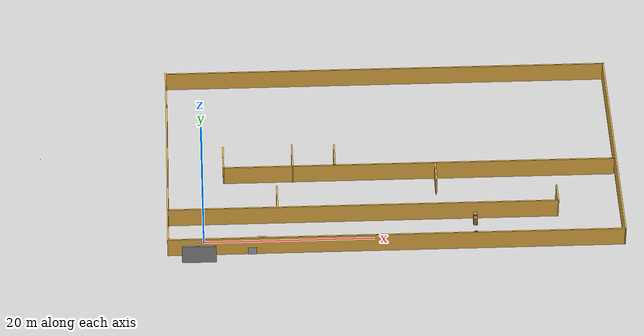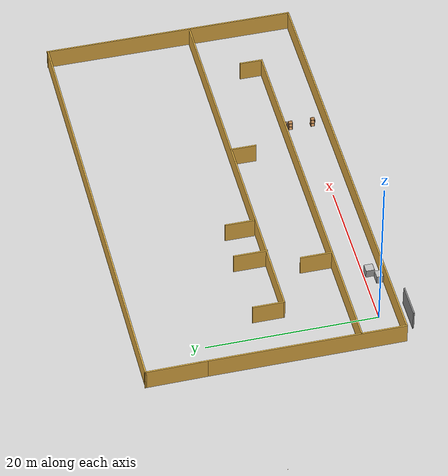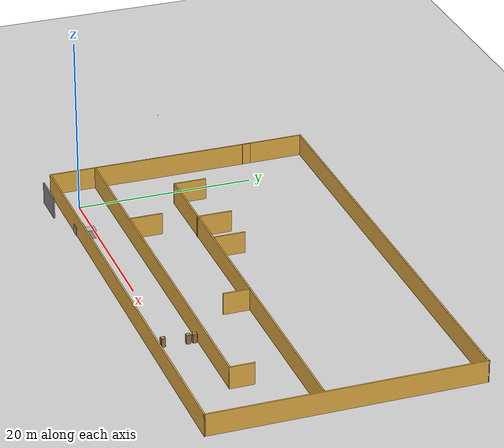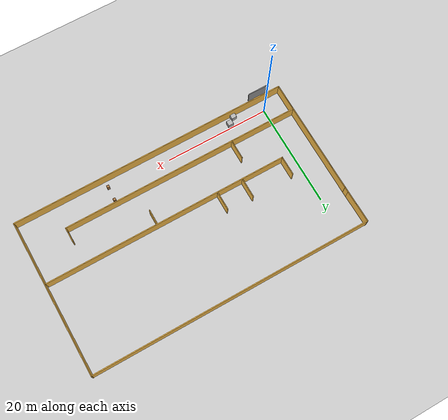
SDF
<sdf version="1.7">
 <world name="default">
  <light name="sun" type="directional">
   <pose>0 0 10 0 -0 0</pose>
   <diffuse>0.8 0.8 0.8 1</diffuse>
   <specular>0.2 0.2 0.2 1</specular>
   <attenuation>
    <range>1000</range>
    <constant>0.9</constant>
    <linear>0.01</linear>
    <quadratic>0.001</quadratic>
   </attenuation>
   <direction>-0.5 0.1 -0.9</direction>
   <spot><inner_angle>0</inner_angle><outer_angle>0</outer_angle><falloff>0</falloff></spot>
  </light>
  <model name="ground_plane">
   <static>1</static>
   <link name="link">
    <collision name="collision">
     <geometry><plane><normal>0 0 1</normal><size>100 100</size></plane></geometry>
     <surface>
      <contact><collide_bitmask>65535</collide_bitmask></contact>
      <friction><ode><mu>100</mu><mu2>50</mu2></ode></friction>
     </surface>
    </collision>
    <visual name="visual">
     <cast_shadows>0</cast_shadows>
     <geometry><plane><normal>0 0 1</normal><size>100 100</size></plane></geometry>
     <material>
      <script><uri>file://media/materials/scripts/gazebo.material</uri><name>Gazebo/Grey</name></script>
     </material>
    </visual>
   </link>
  </model>
  <gravity>0 0 -9.8</gravity>
  <magnetic_field>6e-06 2.3e-05 -4.2e-05</magnetic_field>
  <atmosphere type="adiabatic"/>
  <physics type="ode">
   <max_step_size>0.001</max_step_size>
   <real_time_factor>1</real_time_factor>
   <real_time_update_rate>1000</real_time_update_rate>
  </physics>
  <scene><ambient>0.4 0.4 0.4 1</ambient><background>0.7 0.7 0.7 1</background><shadows>1</shadows></scene>
  <spherical_coordinates>
   <surface_model>EARTH_WGS84</surface_model>
   <latitude_deg>0</latitude_deg>
   <longitude_deg>0</longitude_deg>
   <elevation>0</elevation>
   <heading_deg>0</heading_deg>
  </spherical_coordinates>
  <model name="ustbot_lv1">
   <pose>22.5941 12.8928 0 0 -0 0</pose>
   <link name="Wall_22">
    <collision name="Wall_22_Collision">
     <geometry><box><size>23.75 0.15 2.5</size></box></geometry>
     <pose>0 0 1.25 0 -0 0</pose>
    </collision>
    <visual name="Wall_22_Visual">
     <pose>0 0 1.25 0 -0 0</pose>
     <geometry><box><size>23.75 0.15 2.5</size></box></geometry>
     <material>
      <script><uri>file://media/materials/scripts/gazebo.material</uri><name>Gazebo/Grey</name></script>
      <ambient>1 0.764706 0.305882 1</ambient>
     </material>
     <meta><layer>0</layer></meta>
    </visual>
    <pose>-26.7688 -3.12629 0 0 -0 -1.5708</pose>
   </link>
   <link name="Wall_23">
    <collision name="Wall_23_Collision">
     <geometry><box><size>53.75 0.15 2.5</size></box></geometry>
     <pose>0 0 1.25 0 -0 0</pose>
    </collision>
    <visual name="Wall_23_Visual">
     <pose>0 0 1.25 0 -0 0</pose>
     <geometry><box><size>53.75 0.15 2.5</size></box></geometry>
     <material>
      <script><uri>file://media/materials/scripts/gazebo.material</uri><name>Gazebo/Grey</name></script>
      <ambient>1 0.764706 0.305882 1</ambient>
     </material>
     <meta><layer>0</layer></meta>
    </visual>
    <pose>0.031187 -14.9263 0 0 -0 0</pose>
   </link>
   <link name="Wall_24">
    <collision name="Wall_24_Collision">
     <geometry><box><size>30.0022 0.15 2.5</size></box></geometry>
     <pose>0 0 1.25 0 -0 0</pose>
    </collision>
    <visual name="Wall_24_Visual">
     <pose>0 0 1.25 0 -0 0</pose>
     <geometry><box><size>30.0022 0.15 2.5</size></box></geometry>
     <material>
      <script><uri>file://media/materials/scripts/gazebo.material</uri><name>Gazebo/Grey</name></script>
      <ambient>1 0.764706 0.305882 1</ambient>
     </material>
     <meta><layer>0</layer></meta>
    </visual>
    <pose>26.8002 -0.000248 0 0 -0 1.57287</pose>
   </link>
   <link name="Wall_25">
    <collision name="Wall_25_Collision">
     <geometry><box><size>53.75 0.15 2.5</size></box></geometry>
     <pose>0 0 1.25 0 -0 0</pose>
    </collision>
    <visual name="Wall_25_Visual">
     <pose>0 0 1.25 0 -0 0</pose>
     <geometry><box><size>53.75 0.15 2.5</size></box></geometry>
     <material>
      <script><uri>file://media/materials/scripts/gazebo.material</uri><name>Gazebo/Grey</name></script>
      <ambient>1 0.764706 0.305882 1</ambient>
     </material>
     <meta><layer>0</layer></meta>
    </visual>
    <pose>-0.030691 14.8639 0 0 -0 3.14159</pose>
   </link>
   <link name="Wall_26">
    <collision name="Wall_26_Collision">
     <geometry><box><size>7.25237 0.15 2.5</size></box></geometry>
     <pose>0 0 1.25 0 -0 0</pose>
    </collision>
    <visual name="Wall_26_Visual">
     <pose>0 0 1.25 0 -0 0</pose>
     <geometry><box><size>7.25237 0.15 2.5</size></box></geometry>
     <material>
      <script><uri>file://media/materials/scripts/gazebo.material</uri><name>Gazebo/Grey</name></script>
      <ambient>1 0.764706 0.305882 1</ambient>
     </material>
     <meta><layer>0</layer></meta>
    </visual>
    <pose>-26.7998 11.3748 0 0 -0 -1.56208</pose>
   </link>
   <link name="Wall_29">
    <collision name="Wall_29_Collision">
     <geometry><box><size>46.25 0.15 2.5</size></box></geometry>
     <pose>0 0 1.25 0 -0 0</pose>
    </collision>
    <visual name="Wall_29_Visual">
     <pose>0 0 1.25 0 -0 0</pose>
     <geometry><box><size>46.25 0.15 2.5</size></box></geometry>
     <material>
      <script><uri>file://media/materials/scripts/gazebo.material</uri><name>Gazebo/Grey</name></script>
      <ambient>1 0.764706 0.305882 1</ambient>
     </material>
     <meta><layer>0</layer></meta>
    </visual>
    <pose>-3.71651 -9.74555 0 0 -0 0</pose>
   </link>
   <link name="Wall_30">
    <collision name="Wall_30_Collision">
     <geometry><box><size>2.75 0.15 2.5</size></box></geometry>
     <pose>0 0 1.25 0 -0 0</pose>
    </collision>
    <visual name="Wall_30_Visual">
     <pose>0 0 1.25 0 -0 0</pose>
     <geometry><box><size>2.75 0.15 2.5</size></box></geometry>
     <material>
      <script><uri>file://media/materials/scripts/gazebo.material</uri><name>Gazebo/Grey</name></script>
      <ambient>1 0.764706 0.305882 1</ambient>
     </material>
     <meta><layer>0</layer></meta>
    </visual>
    <pose>19.3335 -8.44555 0 0 -0 1.5708</pose>
   </link>
   <link name="Wall_32">
    <collision name="Wall_32_Collision">
     <geometry><box><size>46.75 0.15 2.5</size></box></geometry>
     <pose>0 0 1.25 0 -0 0</pose>
    </collision>
    <visual name="Wall_32_Visual">
     <pose>0 0 1.25 0 -0 0</pose>
     <geometry><box><size>46.75 0.15 2.5</size></box></geometry>
     <material>
      <script><uri>file://media/materials/scripts/gazebo.material</uri><name>Gazebo/Grey</name></script>
      <ambient>1 0.764706 0.305882 1</ambient>
     </material>
     <meta><layer>0</layer></meta>
    </visual>
    <pose>3.23148 -2.5585 0 0 -0 3.14159</pose>
   </link>
   <link name="Wall_33">
    <collision name="Wall_33_Collision">
     <geometry><box><size>3.75 0.15 2.5</size></box></geometry>
     <pose>0 0 1.25 0 -0 0</pose>
    </collision>
    <visual name="Wall_33_Visual">
     <pose>0 0 1.25 0 -0 0</pose>
     <geometry><box><size>3.75 0.15 2.5</size></box></geometry>
     <material>
      <script><uri>file://media/materials/scripts/gazebo.material</uri><name>Gazebo/Grey</name></script>
      <ambient>1 0.764706 0.305882 1</ambient>
     </material>
     <meta><layer>0</layer></meta>
    </visual>
    <pose>-20.0685 -0.758505 0 0 -0 1.5708</pose>
   </link>
   <link name="Wall_35">
    <collision name="Wall_35_Collision">
     <geometry><box><size>3 0.15 2.5</size></box></geometry>
     <pose>0 0 1.25 0 -0 0</pose>
    </collision>
    <visual name="Wall_35_Visual">
     <pose>0 0 1.25 0 -0 0</pose>
     <geometry><box><size>3 0.15 2.5</size></box></geometry>
     <material>
      <script><uri>file://media/materials/scripts/gazebo.material</uri><name>Gazebo/Grey</name></script>
      <ambient>1 0.764706 0.305882 1</ambient>
     </material>
     <meta><layer>0</layer></meta>
    </visual>
    <pose>5.18382 -4.05466 0 0 -0 -1.5708</pose>
   </link>
   <link name="Wall_37">
    <collision name="Wall_37_Collision">
     <geometry><box><size>3.75 0.15 2.5</size></box></geometry>
     <pose>0 0 1.25 0 -0 0</pose>
    </collision>
    <visual name="Wall_37_Visual">
     <pose>0 0 1.25 0 -0 0</pose>
     <geometry><box><size>3.75 0.15 2.5</size></box></geometry>
     <material>
      <script><uri>file://media/materials/scripts/gazebo.material</uri><name>Gazebo/Grey</name></script>
      <ambient>1 0.764706 0.305882 1</ambient>
     </material>
     <meta><layer>0</layer></meta>
    </visual>
    <pose>-13.8156 -7.87439 0 0 -0 1.5708</pose>
   </link>
   <link name="Wall_40">
    <collision name="Wall_40_Collision">
     <geometry><box><size>4 0.15 2.5</size></box></geometry>
     <pose>0 0 1.25 0 -0 0</pose>
    </collision>
    <visual name="Wall_40_Visual">
     <pose>0 0 1.25 0 -0 0</pose>
     <geometry><box><size>4 0.15 2.5</size></box></geometry>
     <material>
      <script><uri>file://media/materials/scripts/gazebo.material</uri><name>Gazebo/Grey</name></script>
      <ambient>1 0.764706 0.305882 1</ambient>
     </material>
     <meta><layer>0</layer></meta>
    </visual>
    <pose>-11.8231 -0.704664 0 0 -0 1.5708</pose>
   </link>
   <link name="Wall_42">
    <collision name="Wall_42_Collision">
     <geometry><box><size>3.5 0.15 2.5</size></box></geometry>
     <pose>0 0 1.25 0 -0 0</pose>
    </collision>
    <visual name="Wall_42_Visual">
     <pose>0 0 1.25 0 -0 0</pose>
     <geometry><box><size>3.5 0.15 2.5</size></box></geometry>
     <material>
      <script><uri>file://media/materials/scripts/gazebo.material</uri><name>Gazebo/Grey</name></script>
      <ambient>1 0.764706 0.305882 1</ambient>
     </material>
     <meta><layer>0</layer></meta>
    </visual>
    <pose>-6.77087 -0.675562 0 0 -0 -1.5708</pose>
   </link>
   <static>1</static>
  </model>
  <model name="wooden_peg">
   <link name="link">
    <pose>0 0 0.04 0 -0 0</pose>
    <inertial>
     <mass>0.0175</mass>
     <inertia>
      <ixx>9.74923e-06</ixx>
      <ixy>0</ixy>
      <ixz>0</ixz>
      <iyy>9.74923e-06</iyy>
      <iyz>0</iyz>
      <izz>8.31797e-07</izz>
     </inertia>
    </inertial>
    <collision name="collision">
     <geometry><cylinder><radius>0.00975</radius><length>0.08</length></cylinder></geometry>
     <surface>
      <contact>
       <poissons_ratio>0.347</poissons_ratio>
       <elastic_modulus>8.8e+09</elastic_modulus>
       <ode><kp>100000</kp><kd>100</kd><max_vel>100</max_vel><min_depth>0.001</min_depth></ode>
      </contact>
      <friction>
       <torsional>
        <coefficient>1</coefficient>
        <use_patch_radius>0</use_patch_radius>
        <surface_radius>0.01</surface_radius>
       </torsional>
      </friction>
     </surface>
    </collision>
    <visual name="visual">
     <geometry><cylinder><radius>0.00975</radius><length>0.08</length></cylinder></geometry>
     <material>
      <script><uri>file://media/materials/scripts/gazebo.material</uri><name>Gazebo/Wood</name></script>
     </material>
    </visual>
   </link>
   <pose>-19.3961 15.4473 0.008749 1.5708 1.35732 -1.90058</pose>
  </model>
  <model name="cabinet">
   <static>1</static>
   <link name="cabinet_bottom_plate">
    <inertial>
     <pose>0 0 -1 0 -0 0</pose>
     <inertia><ixx>2.05</ixx><ixy>0</ixy><ixz>0</ixz><iyy>2.05</iyy><iyz>0</iyz><izz>2.05</izz></inertia>
     <mass>25</mass>
    </inertial>
    <collision name="cabinet_bottom_plate_geom">
     <pose>0 0 0.01 0 -0 0</pose>
     <geometry><box><size>0.45 0.45 0.02</size></box></geometry>
    </collision>
    <visual name="cabinet_bottom_plate_geom_visual">
     <pose>0 0 0.01 0 -0 0</pose>
     <geometry><box><size>0.45 0.45 0.02</size></box></geometry>
     <material>
      <script><uri>file://media/materials/scripts/gazebo.material</uri><name>Gazebo/Wood</name></script>
     </material>
    </visual>
    <collision name="cabinet_bottom_plate_geom_cabinet_back_plate">
     <pose>0.235 0 0.51 0 -0 0</pose>
     <geometry><box><size>0.02 0.45 1.02</size></box></geometry>
    </collision>
    <visual name="cabinet_bottom_plate_geom_cabinet_back_plate_visual">
     <pose>0.235 0 0.51 0 -0 0</pose>
     <geometry><box><size>0.02 0.45 1.02</size></box></geometry>
     <material>
      <script><uri>file://media/materials/scripts/gazebo.material</uri><name>Gazebo/Wood</name></script>
     </material>
    </visual>
    <collision name="cabinet_bottom_plate_geom_cabinet_left_plate">
     <pose>0 0.235 0.51 0 -0 0</pose>
     <geometry><box><size>0.45 0.02 1.02</size></box></geometry>
    </collision>
    <visual name="cabinet_bottom_plate_geom_cabinet_left_plate_visual">
     <pose>0 0.235 0.51 0 -0 0</pose>
     <geometry><box><size>0.45 0.02 1.02</size></box></geometry>
     <material>
      <script><uri>file://media/materials/scripts/gazebo.material</uri><name>Gazebo/Wood</name></script>
     </material>
    </visual>
    <collision name="cabinet_bottom_plate_geom_cabinet_middle_plate">
     <pose>0 0 0.51 0 -0 0</pose>
     <geometry><box><size>0.45 0.45 0.02</size></box></geometry>
    </collision>
    <visual name="cabinet_bottom_plate_geom_cabinet_middle_plate_visual">
     <pose>0 0 0.51 0 -0 0</pose>
     <geometry><box><size>0.45 0.45 0.02</size></box></geometry>
     <material>
      <script><uri>file://media/materials/scripts/gazebo.material</uri><name>Gazebo/Wood</name></script>
     </material>
    </visual>
    <collision name="cabinet_bottom_plate_geom_cabinet_right_plate">
     <pose>0 -0.235 0.51 0 -0 0</pose>
     <geometry><box><size>0.45 0.02 1.02</size></box></geometry>
    </collision>
    <visual name="cabinet_bottom_plate_geom_cabinet_right_plate_visual">
     <pose>0 -0.235 0.51 0 -0 0</pose>
     <geometry><box><size>0.45 0.02 1.02</size></box></geometry>
     <material>
      <script><uri>file://media/materials/scripts/gazebo.material</uri><name>Gazebo/Wood</name></script>
     </material>
    </visual>
    <collision name="cabinet_bottom_plate_geom_cabinet_top_plate">
     <pose>0 0 1.01 0 -0 0</pose>
     <geometry><box><size>0.45 0.45 0.02</size></box></geometry>
    </collision>
    <visual name="cabinet_bottom_plate_geom_cabinet_top_plate_visual">
     <pose>0 0 1.01 0 -0 0</pose>
     <geometry><box><size>0.45 0.45 0.02</size></box></geometry>
     <material>
      <script><uri>file://media/materials/scripts/gazebo.material</uri><name>Gazebo/Wood</name></script>
     </material>
    </visual>
   </link>
   <pose>32.1094 2.75579 0 0 -0 0</pose>
  </model>
  <model name="cabinet_0">
   <static>1</static>
   <link name="cabinet_bottom_plate">
    <inertial>
     <pose>0 0 -1 0 -0 0</pose>
     <inertia><ixx>2.05</ixx><ixy>0</ixy><ixz>0</ixz><iyy>2.05</iyy><iyz>0</iyz><izz>2.05</izz></inertia>
     <mass>25</mass>
    </inertial>
    <collision name="cabinet_bottom_plate_geom">
     <pose>0 0 0.01 0 -0 0</pose>
     <geometry><box><size>0.45 0.45 0.02</size></box></geometry>
    </collision>
    <visual name="cabinet_bottom_plate_geom_visual">
     <pose>0 0 0.01 0 -0 0</pose>
     <geometry><box><size>0.45 0.45 0.02</size></box></geometry>
     <material>
      <script><uri>file://media/materials/scripts/gazebo.material</uri><name>Gazebo/Wood</name></script>
     </material>
    </visual>
    <collision name="cabinet_bottom_plate_geom_cabinet_back_plate">
     <pose>0.235 0 0.51 0 -0 0</pose>
     <geometry><box><size>0.02 0.45 1.02</size></box></geometry>
    </collision>
    <visual name="cabinet_bottom_plate_geom_cabinet_back_plate_visual">
     <pose>0.235 0 0.51 0 -0 0</pose>
     <geometry><box><size>0.02 0.45 1.02</size></box></geometry>
     <material>
      <script><uri>file://media/materials/scripts/gazebo.material</uri><name>Gazebo/Wood</name></script>
     </material>
    </visual>
    <collision name="cabinet_bottom_plate_geom_cabinet_left_plate">
     <pose>0 0.235 0.51 0 -0 0</pose>
     <geometry><box><size>0.45 0.02 1.02</size></box></geometry>
    </collision>
    <visual name="cabinet_bottom_plate_geom_cabinet_left_plate_visual">
     <pose>0 0.235 0.51 0 -0 0</pose>
     <geometry><box><size>0.45 0.02 1.02</size></box></geometry>
     <material>
      <script><uri>file://media/materials/scripts/gazebo.material</uri><name>Gazebo/Wood</name></script>
     </material>
    </visual>
    <collision name="cabinet_bottom_plate_geom_cabinet_middle_plate">
     <pose>0 0 0.51 0 -0 0</pose>
     <geometry><box><size>0.45 0.45 0.02</size></box></geometry>
    </collision>
    <visual name="cabinet_bottom_plate_geom_cabinet_middle_plate_visual">
     <pose>0 0 0.51 0 -0 0</pose>
     <geometry><box><size>0.45 0.45 0.02</size></box></geometry>
     <material>
      <script><uri>file://media/materials/scripts/gazebo.material</uri><name>Gazebo/Wood</name></script>
     </material>
    </visual>
    <collision name="cabinet_bottom_plate_geom_cabinet_right_plate">
     <pose>0 -0.235 0.51 0 -0 0</pose>
     <geometry><box><size>0.45 0.02 1.02</size></box></geometry>
    </collision>
    <visual name="cabinet_bottom_plate_geom_cabinet_right_plate_visual">
     <pose>0 -0.235 0.51 0 -0 0</pose>
     <geometry><box><size>0.45 0.02 1.02</size></box></geometry>
     <material>
      <script><uri>file://media/materials/scripts/gazebo.material</uri><name>Gazebo/Wood</name></script>
     </material>
    </visual>
    <collision name="cabinet_bottom_plate_geom_cabinet_top_plate">
     <pose>0 0 1.01 0 -0 0</pose>
     <geometry><box><size>0.45 0.45 0.02</size></box></geometry>
    </collision>
    <visual name="cabinet_bottom_plate_geom_cabinet_top_plate_visual">
     <pose>0 0 1.01 0 -0 0</pose>
     <geometry><box><size>0.45 0.45 0.02</size></box></geometry>
     <material>
      <script><uri>file://media/materials/scripts/gazebo.material</uri><name>Gazebo/Wood</name></script>
     </material>
    </visual>
   </link>
   <pose>32.0961 2.07804 0 0 -0 0</pose>
  </model>
  <model name="cabinet_1">
   <static>1</static>
   <link name="cabinet_bottom_plate">
    <inertial>
     <pose>0 0 -1 0 -0 0</pose>
     <inertia><ixx>2.05</ixx><ixy>0</ixy><ixz>0</ixz><iyy>2.05</iyy><iyz>0</iyz><izz>2.05</izz></inertia>
     <mass>25</mass>
    </inertial>
    <collision name="cabinet_bottom_plate_geom">
     <pose>0 0 0.01 0 -0 0</pose>
     <geometry><box><size>0.45 0.45 0.02</size></box></geometry>
    </collision>
    <visual name="cabinet_bottom_plate_geom_visual">
     <pose>0 0 0.01 0 -0 0</pose>
     <geometry><box><size>0.45 0.45 0.02</size></box></geometry>
     <material>
      <script><uri>file://media/materials/scripts/gazebo.material</uri><name>Gazebo/Wood</name></script>
     </material>
    </visual>
    <collision name="cabinet_bottom_plate_geom_cabinet_back_plate">
     <pose>0.235 0 0.51 0 -0 0</pose>
     <geometry><box><size>0.02 0.45 1.02</size></box></geometry>
    </collision>
    <visual name="cabinet_bottom_plate_geom_cabinet_back_plate_visual">
     <pose>0.235 0 0.51 0 -0 0</pose>
     <geometry><box><size>0.02 0.45 1.02</size></box></geometry>
     <material>
      <script><uri>file://media/materials/scripts/gazebo.material</uri><name>Gazebo/Wood</name></script>
     </material>
    </visual>
    <collision name="cabinet_bottom_plate_geom_cabinet_left_plate">
     <pose>0 0.235 0.51 0 -0 0</pose>
     <geometry><box><size>0.45 0.02 1.02</size></box></geometry>
    </collision>
    <visual name="cabinet_bottom_plate_geom_cabinet_left_plate_visual">
     <pose>0 0.235 0.51 0 -0 0</pose>
     <geometry><box><size>0.45 0.02 1.02</size></box></geometry>
     <material>
      <script><uri>file://media/materials/scripts/gazebo.material</uri><name>Gazebo/Wood</name></script>
     </material>
    </visual>
    <collision name="cabinet_bottom_plate_geom_cabinet_middle_plate">
     <pose>0 0 0.51 0 -0 0</pose>
     <geometry><box><size>0.45 0.45 0.02</size></box></geometry>
    </collision>
    <visual name="cabinet_bottom_plate_geom_cabinet_middle_plate_visual">
     <pose>0 0 0.51 0 -0 0</pose>
     <geometry><box><size>0.45 0.45 0.02</size></box></geometry>
     <material>
      <script><uri>file://media/materials/scripts/gazebo.material</uri><name>Gazebo/Wood</name></script>
     </material>
    </visual>
    <collision name="cabinet_bottom_plate_geom_cabinet_right_plate">
     <pose>0 -0.235 0.51 0 -0 0</pose>
     <geometry><box><size>0.45 0.02 1.02</size></box></geometry>
    </collision>
    <visual name="cabinet_bottom_plate_geom_cabinet_right_plate_visual">
     <pose>0 -0.235 0.51 0 -0 0</pose>
     <geometry><box><size>0.45 0.02 1.02</size></box></geometry>
     <material>
      <script><uri>file://media/materials/scripts/gazebo.material</uri><name>Gazebo/Wood</name></script>
     </material>
    </visual>
    <collision name="cabinet_bottom_plate_geom_cabinet_top_plate">
     <pose>0 0 1.01 0 -0 0</pose>
     <geometry><box><size>0.45 0.45 0.02</size></box></geometry>
    </collision>
    <visual name="cabinet_bottom_plate_geom_cabinet_top_plate_visual">
     <pose>0 0 1.01 0 -0 0</pose>
     <geometry><box><size>0.45 0.45 0.02</size></box></geometry>
     <material>
      <script><uri>file://media/materials/scripts/gazebo.material</uri><name>Gazebo/Wood</name></script>
     </material>
    </visual>
   </link>
   <pose>31.9913 -0.596967 0.082198 0 -0 0</pose>
  </model>
  <model name="my_box">
   <pose>6.85468 -0.721132 0.5 0 -0 0</pose>
   <static>1</static>
   <link name="link">
    <inertial>
     <mass>1</mass>
     <inertia><ixx>0.083</ixx><ixy>0</ixy><ixz>0</ixz><iyy>0.083</iyy><iyz>0</iyz><izz>0.083</izz></inertia>
    </inertial>
    <collision name="collision"><geometry><box><size>1 1 1</size></box></geometry></collision>
    <visual name="visual">
     <geometry><box><size>1 1 1</size></box></geometry>
     <material>
      <script>
       <uri>https://fuel.gazebosim.org/1.0/ydenker/models/box test/3/files/material/scripts</uri>
       <uri>https://fuel.gazebosim.org/1.0/ydenker/models/box test/3/files/material/testures</uri>
       <name>Ground/Diffuse</name>
      </script>
     </material>
    </visual>
   </link>
  </model>
  <model name="my_box_0">
   <pose>5.66263 -1.65749 0.5 0 -0 0</pose>
   <static>1</static>
   <link name="link">
    <inertial>
     <mass>1</mass>
     <inertia><ixx>0.083</ixx><ixy>0</ixy><ixz>0</ixz><iyy>0.083</iyy><iyz>0</iyz><izz>0.083</izz></inertia>
    </inertial>
    <collision name="collision"><geometry><box><size>1 1 1</size></box></geometry></collision>
    <visual name="visual">
     <geometry><box><size>1 1 1</size></box></geometry>
     <material>
      <script>
       <uri>https://fuel.gazebosim.org/1.0/ydenker/models/box test/3/files/material/scripts</uri>
       <uri>https://fuel.gazebosim.org/1.0/ydenker/models/box test/3/files/material/testures</uri>
       <name>Ground/Diffuse</name>
      </script>
     </material>
    </visual>
   </link>
  </model>
  <model name="ustbot_lv2">
   <pose>-0.555 -1.6825 0 0 -0 0</pose>
   <link name="Wall_0">
    <collision name="Wall_0_Collision">
     <geometry><box><size>4 0.15 2.5</size></box></geometry>
     <pose>0 0 1.25 0 -0 0</pose>
    </collision>
    <visual name="Wall_0_Visual">
     <pose>0 0 1.25 0 -0 0</pose>
     <geometry><box><size>4 0.15 2.5</size></box></geometry>
     <material>
      <script><uri>file://media/materials/scripts/gazebo.material</uri><name>Gazebo/Grey</name></script>
      <ambient>1 1 1 1</ambient>
     </material>
     <meta><layer>0</layer></meta>
    </visual>
    <pose>0 -1.6075 0 0 -0 3.14159</pose>
   </link>
   <static>1</static>
  </model>
 </world>
</sdf>
